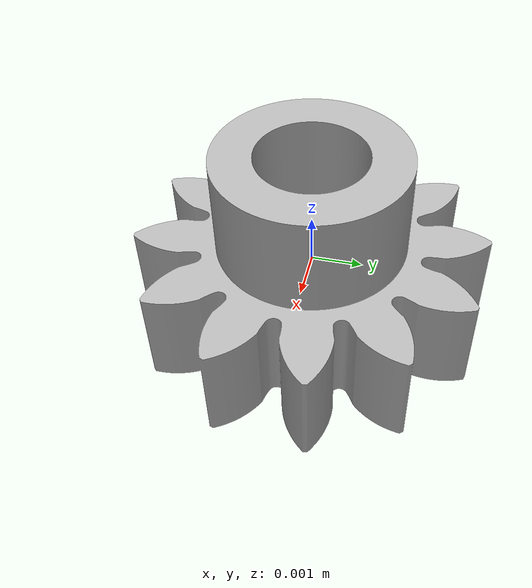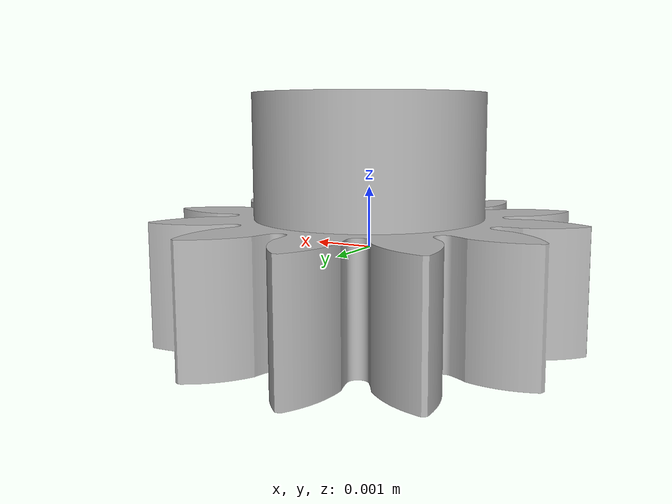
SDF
<?xml version="1.0" ?>
<sdf version="1.5">
  <model name="gear_0">
    <static>false</static>
    <link name="link">
      <collision name="collision">
        <geometry>
          <mesh>
            <scale>1 1 1</scale>
            <uri>model://Planetary/gear_0/gear_0.dae</uri>
          </mesh>
        </geometry>
      </collision>
      <visual name="visual">
        <geometry>
          <mesh>
            <scale>1 1 1</scale>
            <uri>model://Planetary/gear_0/gear_0.dae</uri>
          </mesh>
        </geometry>
      </visual>
    </link>
  </model>
</sdf>
